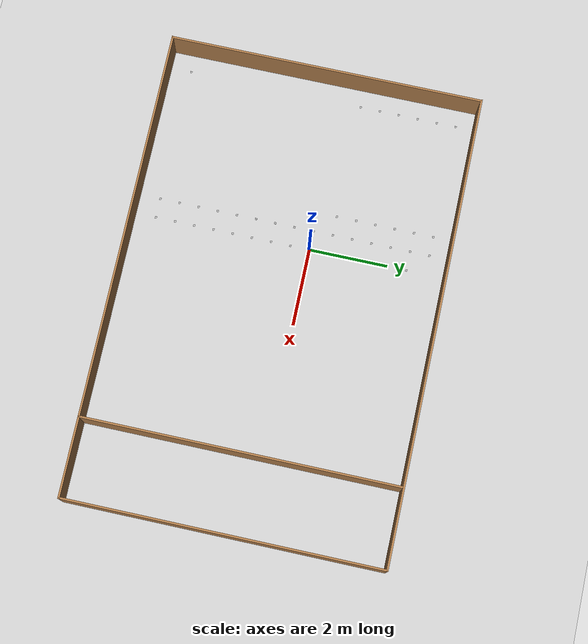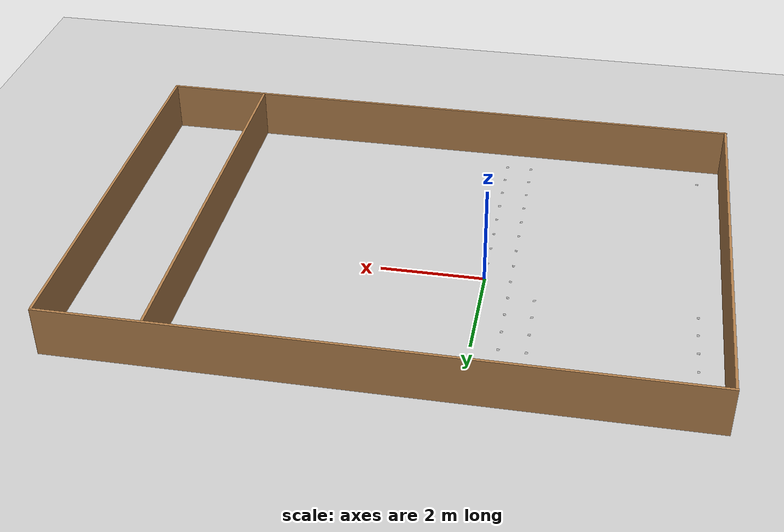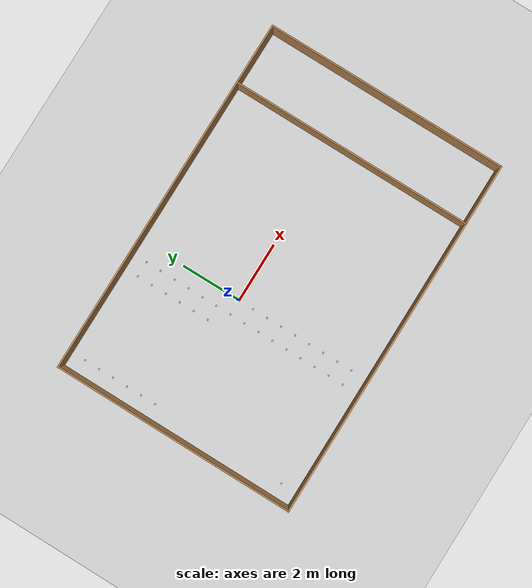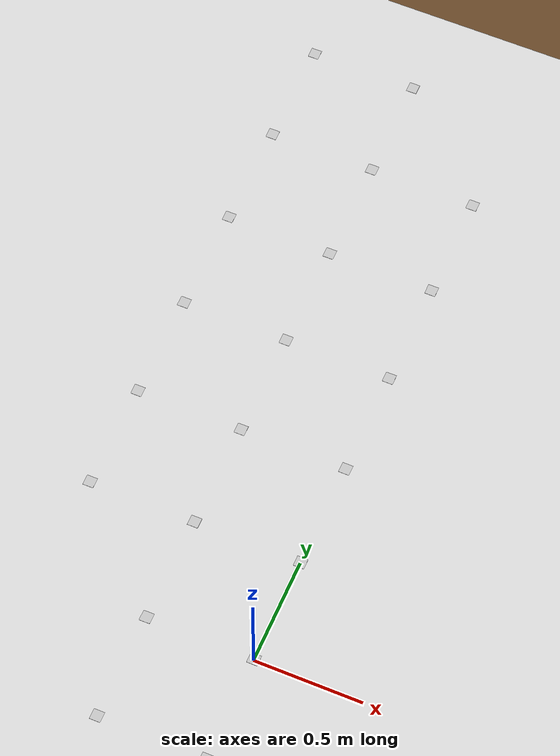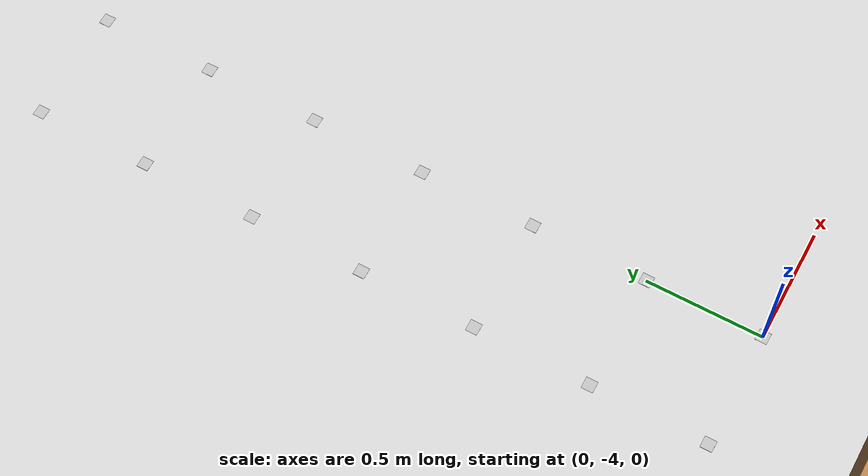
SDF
<sdf version="1.5">
 <world name="default">
  <physics name="default_physics" default="0" type="ode">
   <gravity>0 0 -9.8066</gravity>
   <ode>
    <solver>
     <type>quick</type>
     <iters>10</iters>
     <sor>1.3</sor>
     <use_dynamic_moi_rescaling>0</use_dynamic_moi_rescaling>
    </solver>
    <constraints>
     <cfm>0</cfm>
     <erp>0.2</erp>
     <contact_max_correcting_vel>1000</contact_max_correcting_vel>
     <contact_surface_layer>0.001</contact_surface_layer>
    </constraints>
   </ode>
   <max_step_size>0.004</max_step_size>
   <real_time_factor>1</real_time_factor>
   <real_time_update_rate>250</real_time_update_rate>
   <magnetic_field>6.0e-06 2.3e-05 -4.2e-05</magnetic_field>
  </physics>
  <scene><shadows>false</shadows></scene>
  <light name="sun" type="directional">
   <pose>0 0 1000 0.4 0.2 0</pose>
   <diffuse>1 1 1 1</diffuse>
   <specular>0.6 0.6 0.6 1</specular>
   <direction>0.1 0.1 -0.9</direction>
   <attenuation>
    <range>20</range>
    <constant>0.5</constant>
    <linear>0.01</linear>
    <quadratic>0.001</quadratic>
   </attenuation>
  </light>
  <include><uri>model://ground_plane</uri></include>
  <model name="wall"><include><uri>model://wall</uri><pose>-0.090000 0.020000 0 0 0 0</pose></include></model>
  <model name="tag1"><include><uri>model://tags/tag1</uri><pose>-4.0 -4.0 0.011 0 0 0</pose></include></model>
  <model name="tag10"><include><uri>model://tags/tag10</uri><pose>-4.0 .5 0.011 0 0 0</pose></include></model>
  <model name="tag11"><include><uri>model://tags/tag11</uri><pose>-4.0 1.0 0.011 0 0 0</pose></include></model>
  <model name="tag12"><include><uri>model://tags/tag12</uri><pose>-4.0 1.5 0.011 0 0 0</pose></include></model>
  <model name="tag13"><include><uri>model://tags/tag13</uri><pose>-4.0 2.0 0.011 0 0 0</pose></include></model>
  <model name="tag14"><include><uri>model://tags/tag14</uri><pose>-4.0 2.5 0.011 0 0 0</pose></include></model>
  <model name="tag15"><include><uri>model://tags/tag15</uri><pose>-4.0 3.0 0.011 0 0 0</pose></include></model>
  <model name="tag100"><include><uri>model://tags/tag100</uri><pose>-1.0 .5 0.011 0 0 0</pose></include></model>
  <model name="tag101">
   <include><uri>model://tags/tag101</uri><pose>-1.0 1.0 0.011 0 0 0</pose></include>
  </model>
  <model name="tag102">
   <include><uri>model://tags/tag102</uri><pose>-1.0 1.5 0.011 0 0 0</pose></include>
  </model>
  <model name="tag103">
   <include><uri>model://tags/tag103</uri><pose>-1.0 2.0 0.011 0 0 0</pose></include>
  </model>
  <model name="tag104">
   <include><uri>model://tags/tag104</uri><pose>-1.0 2.5 0.011 0 0 0</pose></include>
  </model>
  <model name="tag105">
   <include><uri>model://tags/tag105</uri><pose>-1.0 3.0 0.011 0 0 0</pose></include>
  </model>
  <model name="tag106">
   <include><uri>model://tags/tag106</uri><pose>-.5 -4.0 0.011 0 0 0</pose></include>
  </model>
  <model name="tag107">
   <include><uri>model://tags/tag107</uri><pose>-.5 -3.5 0.011 0 0 0</pose></include>
  </model>
  <model name="tag108">
   <include><uri>model://tags/tag108</uri><pose>-.5 -3.0 0.011 0 0 0</pose></include>
  </model>
  <model name="tag109">
   <include><uri>model://tags/tag109</uri><pose>-.5 -2.5 0.011 0 0 0</pose></include>
  </model>
  <model name="tag110">
   <include><uri>model://tags/tag110</uri><pose>-.5 -2.0 0.011 0 0 0</pose></include>
  </model>
  <model name="tag111">
   <include><uri>model://tags/tag111</uri><pose>-.5 -1.5 0.011 0 0 0</pose></include>
  </model>
  <model name="tag112">
   <include><uri>model://tags/tag112</uri><pose>-.5 -1.0 0.011 0 0 0</pose></include>
  </model>
  <model name="tag113"><include><uri>model://tags/tag113</uri><pose>-.5 -.5 0.011 0 0 0</pose></include></model>
  <model name="tag114"><include><uri>model://tags/tag114</uri><pose>-.5 0 0.011 0 0 0</pose></include></model>
  <model name="tag115"><include><uri>model://tags/tag115</uri><pose>-.5 .5 0.011 0 0 0</pose></include></model>
  <model name="tag116"><include><uri>model://tags/tag116</uri><pose>-.5 1.0 0.011 0 0 0</pose></include></model>
  <model name="tag117"><include><uri>model://tags/tag117</uri><pose>-.5 1.5 0.011 0 0 0</pose></include></model>
  <model name="tag118"><include><uri>model://tags/tag118</uri><pose>-.5 2.0 0.011 0 0 0</pose></include></model>
  <model name="tag119"><include><uri>model://tags/tag119</uri><pose>-.5 2.5 0.011 0 0 0</pose></include></model>
  <model name="tag120"><include><uri>model://tags/tag120</uri><pose>-.5 3.0 0.011 0 0 0</pose></include></model>
  <model name="tag121"><include><uri>model://tags/tag121</uri><pose>0 -4.0 0.011 0 0 0</pose></include></model>
  <model name="tag122"><include><uri>model://tags/tag122</uri><pose>0 -3.5 0.011 0 0 0</pose></include></model>
  <model name="tag123"><include><uri>model://tags/tag123</uri><pose>0 -3.0 0.011 0 0 0</pose></include></model>
  <model name="tag124"><include><uri>model://tags/tag124</uri><pose>0 -2.5 0.011 0 0 0</pose></include></model>
  <model name="tag125"><include><uri>model://tags/tag125</uri><pose>0 -2.0 0.011 0 0 0</pose></include></model>
  <model name="tag126"><include><uri>model://tags/tag126</uri><pose>0 -1.5 0.011 0 0 0</pose></include></model>
  <model name="tag127"><include><uri>model://tags/tag127</uri><pose>0 -1.0 0.011 0 0 0</pose></include></model>
  <model name="tag128"><include><uri>model://tags/tag128</uri><pose>0 -.5 0.011 0 0 0</pose></include></model>
  <model name="tag129"><include><uri>model://tags/tag129</uri><pose>0 0 0.011 0 0 0</pose></include></model>
  <model name="tag130"><include><uri>model://tags/tag130</uri><pose>0 .5 0.011 0 0 0</pose></include></model>
  <model name="tag131"><include><uri>model://tags/tag131</uri><pose>0 1.0 0.011 0 0 0</pose></include></model>
  <model name="tag132"><include><uri>model://tags/tag132</uri><pose>0 1.5 0.011 0 0 0</pose></include></model>
  <model name="tag133"><include><uri>model://tags/tag133</uri><pose>0 2.0 0.011 0 0 0</pose></include></model>
  <model name="tag134"><include><uri>model://tags/tag134</uri><pose>0 2.5 0.011 0 0 0</pose></include></model>
 </world>
</sdf>

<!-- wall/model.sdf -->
<sdf version="1.5">
    <model name="walls">
        <static>true</static>
        <link name="wall_1">
            <pose>7.57 -0.57 0.5 0 0 0</pose>
            <static>true</static>
            <inertial>
                <mass>1.0</mass>
                <inertia>
                    <!-- inertias are tricky to compute -->
                    <ixx>1</ixx> <!-- for a box: ixx = 0.083 * mass * (y*y + z*z) -->
                    <ixy>0</ixy> <!-- for a box: ixy = 0 -->
                    <ixz>0</ixz> <!-- for a box: ixz = 0 -->
                    <iyy>1</iyy> <!-- for a box: iyy = 0.083 * mass * (x*x + z*z) -->
                    <iyz>0</iyz> <!-- for a box: iyz = 0 -->
                    <izz>1</izz> <!-- for a box: izz = 0.083 * mass * (x*x + y*y) -->
                </inertia>
            </inertial>
            <collision name="collision">
                <geometry>
                    <box>
                        <size>0.05 8 1</size>
                    </box>
                </geometry>
            </collision>
            <visual name="visual">
                <geometry>
                    <box>
                        <size>0.05 8 1</size>
                    </box>
                </geometry>
                <material>
                    <script>
                        <uri>file://media/materials/scripts/gazebo.material</uri>
                        <name>Gazebo/Wood</name>
                    </script>
                </material>
            </visual>
        </link>

        <link name="wall_2">
            <pose>-4.38 -0.57 0.5 0 0 0</pose>
            <static>true</static>
            <inertial>
                <mass>1.0</mass>
                <inertia>
                    <!-- inertias are tricky to compute -->
                    <ixx>1</ixx> <!-- for a box: ixx = 0.083 * mass * (y*y + z*z) -->
                    <ixy>0</ixy> <!-- for a box: ixy = 0 -->
                    <ixz>0</ixz> <!-- for a box: ixz = 0 -->
                    <iyy>1</iyy> <!-- for a box: iyy = 0.083 * mass * (x*x + z*z) -->
                    <iyz>0</iyz> <!-- for a box: iyz = 0 -->
                    <izz>1</izz> <!-- for a box: izz = 0.083 * mass * (x*x + y*y) -->
                </inertia>
            </inertial>
            <collision name="collision">
                <geometry>
                    <box>
                        <size>0.05 8 1</size>
                    </box>
                </geometry>
            </collision>
            <visual name="visual">
                <geometry>
                    <box>
                        <size>0.05 8 1</size>
                    </box>
                </geometry>
                <material>
                    <script>
                        <uri>file://media/materials/scripts/gazebo.material</uri>
                        <name>Gazebo/Wood</name>
                    </script>
                </material>
            </visual>
        </link>

        <link name="wall_3">
            <pose>1.59 -4.56 0.5 0 0 0</pose>
            <static>true</static>
            <inertial>
                <mass>1.0</mass>
                <inertia>
                    <!-- inertias are tricky to compute -->
                    <ixx>1</ixx> <!-- for a box: ixx = 0.083 * mass * (y*y + z*z) -->
                    <ixy>0</ixy> <!-- for a box: ixy = 0 -->
                    <ixz>0</ixz> <!-- for a box: ixz = 0 -->
                    <iyy>1</iyy> <!-- for a box: iyy = 0.083 * mass * (x*x + z*z) -->
                    <iyz>0</iyz> <!-- for a box: iyz = 0 -->
                    <izz>1</izz> <!-- for a box: izz = 0.083 * mass * (x*x + y*y) -->
                </inertia>
            </inertial>
            <collision name="collision">
                <geometry>
                    <box>
                        <size>12 0.05 1</size>
                    </box>
                </geometry>
            </collision>
            <visual name="visual">
                <geometry>
                    <box>
                        <size>12 0.05 1</size>
                    </box>
                </geometry>
                <material>
                    <script>
                        <uri>file://media/materials/scripts/gazebo.material</uri>
                        <name>Gazebo/Wood</name>
                    </script>
                </material>
            </visual>
        </link>

        <link name="wall_4">
            <pose>1.59 3.44 0.5 0 0 0</pose>
            <static>true</static>
            <inertial>
                <mass>1.0</mass>
                <inertia>
                    <!-- inertias are tricky to compute -->
                    <ixx>1</ixx> <!-- for a box: ixx = 0.083 * mass * (y*y + z*z) -->
                    <ixy>0</ixy> <!-- for a box: ixy = 0 -->
                    <ixz>0</ixz> <!-- for a box: ixz = 0 -->
                    <iyy>1</iyy> <!-- for a box: iyy = 0.083 * mass * (x*x + z*z) -->
                    <iyz>0</iyz> <!-- for a box: iyz = 0 -->
                    <izz>1</izz> <!-- for a box: izz = 0.083 * mass * (x*x + y*y) -->
                </inertia>
            </inertial>
            <collision name="collision">
                <geometry>
                    <box>
                        <size>12 0.05 1</size>
                    </box>
                </geometry>
            </collision>
            <visual name="visual">
                <geometry>
                    <box>
                        <size>12 0.05 1</size>
                    </box>
                </geometry>
                <material>
                    <script>
                        <uri>file://media/materials/scripts/gazebo.material</uri>
                        <name>Gazebo/Wood</name>
                    </script>
                </material>
            </visual>
        </link>

        <link name="wall_5">
            <pose>5.57 -0.57 0.5 0 0 0</pose>
            <static>true</static>
            <inertial>
                <mass>1.0</mass>
                <inertia>
                    <!-- inertias are tricky to compute -->
                    <ixx>1</ixx> <!-- for a box: ixx = 0.083 * mass * (y*y + z*z) -->
                    <ixy>0</ixy> <!-- for a box: ixy = 0 -->
                    <ixz>0</ixz> <!-- for a box: ixz = 0 -->
                    <iyy>1</iyy> <!-- for a box: iyy = 0.083 * mass * (x*x + z*z) -->
                    <iyz>0</iyz> <!-- for a box: iyz = 0 -->
                    <izz>1</izz> <!-- for a box: izz = 0.083 * mass * (x*x + y*y) -->
                </inertia>
            </inertial>
            <collision name="collision">
                <geometry>
                    <box>
                        <size>0.05 8 1</size>
                    </box>
                </geometry>
            </collision>
            <visual name="visual">
                <geometry>
                    <box>
                        <size>0.05 8 1</size>
                    </box>
                </geometry>
                <material>
                    <script>
                        <uri>file://media/materials/scripts/gazebo.material</uri>
                        <name>Gazebo/Wood</name>
                    </script>
                </material>
            </visual>
        </link>

    </model>
</sdf>

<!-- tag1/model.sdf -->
<sdf version="1.5">
  <model name="tag1">
    <static>true</static>

    <link name="link">
      <collision name="collision">
        <geometry>
          <mesh>
            <uri>model://tags/tag1/meshes/tag1.dae</uri>
          </mesh>
        </geometry>
      </collision>
      <visual name="visual">
        <geometry>
          <mesh>
            <uri>model://tags/tag1/meshes/tag1.dae</uri>
            </mesh>
        </geometry>
      </visual>
    </link>
  </model>
</sdf>

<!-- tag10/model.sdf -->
<sdf version="1.5">
  <model name="tag10">
    <static>true</static>

    <link name="link">
      <collision name="collision">
        <geometry>
          <mesh>
            <uri>model://tags/tag10/meshes/tag10.dae</uri>
          </mesh>
        </geometry>
      </collision>
      <visual name="visual">
        <geometry>
          <mesh>
            <uri>model://tags/tag10/meshes/tag10.dae</uri>
            </mesh>
        </geometry>
      </visual>
    </link>
  </model>
</sdf>

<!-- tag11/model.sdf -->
<sdf version="1.5">
  <model name="tag11">
    <static>true</static>

    <link name="link">
      <collision name="collision">
        <geometry>
          <mesh>
            <uri>model://tags/tag11/meshes/tag11.dae</uri>
          </mesh>
        </geometry>
      </collision>
      <visual name="visual">
        <geometry>
          <mesh>
            <uri>model://tags/tag11/meshes/tag11.dae</uri>
            </mesh>
        </geometry>
      </visual>
    </link>
  </model>
</sdf>

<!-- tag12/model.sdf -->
<sdf version="1.5">
  <model name="tag12">
    <static>true</static>

    <link name="link">
      <collision name="collision">
        <geometry>
          <mesh>
            <uri>model://tags/tag12/meshes/tag12.dae</uri>
          </mesh>
        </geometry>
      </collision>
      <visual name="visual">
        <geometry>
          <mesh>
            <uri>model://tags/tag12/meshes/tag12.dae</uri>
            </mesh>
        </geometry>
      </visual>
    </link>
  </model>
</sdf>

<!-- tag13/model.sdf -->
<sdf version="1.5">
  <model name="tag13">
    <static>true</static>

    <link name="link">
      <collision name="collision">
        <geometry>
          <mesh>
            <uri>model://tags/tag13/meshes/tag13.dae</uri>
          </mesh>
        </geometry>
      </collision>
      <visual name="visual">
        <geometry>
          <mesh>
            <uri>model://tags/tag13/meshes/tag13.dae</uri>
            </mesh>
        </geometry>
      </visual>
    </link>
  </model>
</sdf>

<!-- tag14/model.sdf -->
<sdf version="1.5">
  <model name="tag14">
    <static>true</static>

    <link name="link">
      <collision name="collision">
        <geometry>
          <mesh>
            <uri>model://tags/tag14/meshes/tag14.dae</uri>
          </mesh>
        </geometry>
      </collision>
      <visual name="visual">
        <geometry>
          <mesh>
            <uri>model://tags/tag14/meshes/tag14.dae</uri>
            </mesh>
        </geometry>
      </visual>
    </link>
  </model>
</sdf>

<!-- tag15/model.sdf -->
<sdf version="1.5">
  <model name="tag15">
    <static>true</static>

    <link name="link">
      <collision name="collision">
        <geometry>
          <mesh>
            <uri>model://tags/tag15/meshes/tag15.dae</uri>
          </mesh>
        </geometry>
      </collision>
      <visual name="visual">
        <geometry>
          <mesh>
            <uri>model://tags/tag15/meshes/tag15.dae</uri>
            </mesh>
        </geometry>
      </visual>
    </link>
  </model>
</sdf>

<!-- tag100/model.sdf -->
<sdf version="1.5">
  <model name="tag100">
    <static>true</static>

    <link name="link">
      <collision name="collision">
        <geometry>
          <mesh>
            <uri>model://tags/tag100/meshes/tag100.dae</uri>
          </mesh>
        </geometry>
      </collision>
      <visual name="visual">
        <geometry>
          <mesh>
            <uri>model://tags/tag100/meshes/tag100.dae</uri>
            </mesh>
        </geometry>
      </visual>
    </link>
  </model>
</sdf>

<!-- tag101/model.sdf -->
<sdf version="1.5">
  <model name="tag101">
    <static>true</static>

    <link name="link">
      <collision name="collision">
        <geometry>
          <mesh>
            <uri>model://tags/tag101/meshes/tag101.dae</uri>
          </mesh>
        </geometry>
      </collision>
      <visual name="visual">
        <geometry>
          <mesh>
            <uri>model://tags/tag101/meshes/tag101.dae</uri>
            </mesh>
        </geometry>
      </visual>
    </link>
  </model>
</sdf>

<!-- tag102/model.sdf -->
<sdf version="1.5">
  <model name="tag102">
    <static>true</static>

    <link name="link">
      <collision name="collision">
        <geometry>
          <mesh>
            <uri>model://tags/tag102/meshes/tag102.dae</uri>
          </mesh>
        </geometry>
      </collision>
      <visual name="visual">
        <geometry>
          <mesh>
            <uri>model://tags/tag102/meshes/tag102.dae</uri>
            </mesh>
        </geometry>
      </visual>
    </link>
  </model>
</sdf>

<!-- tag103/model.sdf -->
<sdf version="1.5">
  <model name="tag103">
    <static>true</static>

    <link name="link">
      <collision name="collision">
        <geometry>
          <mesh>
            <uri>model://tags/tag103/meshes/tag103.dae</uri>
          </mesh>
        </geometry>
      </collision>
      <visual name="visual">
        <geometry>
          <mesh>
            <uri>model://tags/tag103/meshes/tag103.dae</uri>
            </mesh>
        </geometry>
      </visual>
    </link>
  </model>
</sdf>

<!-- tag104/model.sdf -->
<sdf version="1.5">
  <model name="tag104">
    <static>true</static>

    <link name="link">
      <collision name="collision">
        <geometry>
          <mesh>
            <uri>model://tags/tag104/meshes/tag104.dae</uri>
          </mesh>
        </geometry>
      </collision>
      <visual name="visual">
        <geometry>
          <mesh>
            <uri>model://tags/tag104/meshes/tag104.dae</uri>
            </mesh>
        </geometry>
      </visual>
    </link>
  </model>
</sdf>

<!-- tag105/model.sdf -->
<sdf version="1.5">
  <model name="tag105">
    <static>true</static>

    <link name="link">
      <collision name="collision">
        <geometry>
          <mesh>
            <uri>model://tags/tag105/meshes/tag105.dae</uri>
          </mesh>
        </geometry>
      </collision>
      <visual name="visual">
        <geometry>
          <mesh>
            <uri>model://tags/tag105/meshes/tag105.dae</uri>
            </mesh>
        </geometry>
      </visual>
    </link>
  </model>
</sdf>

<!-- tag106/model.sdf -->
<sdf version="1.5">
  <model name="tag106">
    <static>true</static>

    <link name="link">
      <collision name="collision">
        <geometry>
          <mesh>
            <uri>model://tags/tag106/meshes/tag106.dae</uri>
          </mesh>
        </geometry>
      </collision>
      <visual name="visual">
        <geometry>
          <mesh>
            <uri>model://tags/tag106/meshes/tag106.dae</uri>
            </mesh>
        </geometry>
      </visual>
    </link>
  </model>
</sdf>

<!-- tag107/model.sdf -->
<sdf version="1.5">
  <model name="tag107">
    <static>true</static>

    <link name="link">
      <collision name="collision">
        <geometry>
          <mesh>
            <uri>model://tags/tag107/meshes/tag107.dae</uri>
          </mesh>
        </geometry>
      </collision>
      <visual name="visual">
        <geometry>
          <mesh>
            <uri>model://tags/tag107/meshes/tag107.dae</uri>
            </mesh>
        </geometry>
      </visual>
    </link>
  </model>
</sdf>

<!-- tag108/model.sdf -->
<sdf version="1.5">
  <model name="tag108">
    <static>true</static>

    <link name="link">
      <collision name="collision">
        <geometry>
          <mesh>
            <uri>model://tags/tag108/meshes/tag108.dae</uri>
          </mesh>
        </geometry>
      </collision>
      <visual name="visual">
        <geometry>
          <mesh>
            <uri>model://tags/tag108/meshes/tag108.dae</uri>
            </mesh>
        </geometry>
      </visual>
    </link>
  </model>
</sdf>

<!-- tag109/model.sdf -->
<sdf version="1.5">
  <model name="tag109">
    <static>true</static>

    <link name="link">
      <collision name="collision">
        <geometry>
          <mesh>
            <uri>model://tags/tag109/meshes/tag109.dae</uri>
          </mesh>
        </geometry>
      </collision>
      <visual name="visual">
        <geometry>
          <mesh>
            <uri>model://tags/tag109/meshes/tag109.dae</uri>
            </mesh>
        </geometry>
      </visual>
    </link>
  </model>
</sdf>

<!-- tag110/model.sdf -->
<sdf version="1.5">
  <model name="tag110">
    <static>true</static>

    <link name="link">
      <collision name="collision">
        <geometry>
          <mesh>
            <uri>model://tags/tag110/meshes/tag110.dae</uri>
          </mesh>
        </geometry>
      </collision>
      <visual name="visual">
        <geometry>
          <mesh>
            <uri>model://tags/tag110/meshes/tag110.dae</uri>
            </mesh>
        </geometry>
      </visual>
    </link>
  </model>
</sdf>

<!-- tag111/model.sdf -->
<sdf version="1.5">
  <model name="tag111">
    <static>true</static>

    <link name="link">
      <collision name="collision">
        <geometry>
          <mesh>
            <uri>model://tags/tag111/meshes/tag111.dae</uri>
          </mesh>
        </geometry>
      </collision>
      <visual name="visual">
        <geometry>
          <mesh>
            <uri>model://tags/tag111/meshes/tag111.dae</uri>
            </mesh>
        </geometry>
      </visual>
    </link>
  </model>
</sdf>

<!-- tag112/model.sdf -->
<sdf version="1.5">
  <model name="tag112">
    <static>true</static>

    <link name="link">
      <collision name="collision">
        <geometry>
          <mesh>
            <uri>model://tags/tag112/meshes/tag112.dae</uri>
          </mesh>
        </geometry>
      </collision>
      <visual name="visual">
        <geometry>
          <mesh>
            <uri>model://tags/tag112/meshes/tag112.dae</uri>
            </mesh>
        </geometry>
      </visual>
    </link>
  </model>
</sdf>

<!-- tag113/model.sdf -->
<sdf version="1.5">
  <model name="tag113">
    <static>true</static>

    <link name="link">
      <collision name="collision">
        <geometry>
          <mesh>
            <uri>model://tags/tag113/meshes/tag113.dae</uri>
          </mesh>
        </geometry>
      </collision>
      <visual name="visual">
        <geometry>
          <mesh>
            <uri>model://tags/tag113/meshes/tag113.dae</uri>
            </mesh>
        </geometry>
      </visual>
    </link>
  </model>
</sdf>

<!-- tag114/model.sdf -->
<sdf version="1.5">
  <model name="tag114">
    <static>true</static>

    <link name="link">
      <collision name="collision">
        <geometry>
          <mesh>
            <uri>model://tags/tag114/meshes/tag114.dae</uri>
          </mesh>
        </geometry>
      </collision>
      <visual name="visual">
        <geometry>
          <mesh>
            <uri>model://tags/tag114/meshes/tag114.dae</uri>
            </mesh>
        </geometry>
      </visual>
    </link>
  </model>
</sdf>

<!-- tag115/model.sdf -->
<sdf version="1.5">
  <model name="tag115">
    <static>true</static>

    <link name="link">
      <collision name="collision">
        <geometry>
          <mesh>
            <uri>model://tags/tag115/meshes/tag115.dae</uri>
          </mesh>
        </geometry>
      </collision>
      <visual name="visual">
        <geometry>
          <mesh>
            <uri>model://tags/tag115/meshes/tag115.dae</uri>
            </mesh>
        </geometry>
      </visual>
    </link>
  </model>
</sdf>

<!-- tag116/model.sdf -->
<sdf version="1.5">
  <model name="tag116">
    <static>true</static>

    <link name="link">
      <collision name="collision">
        <geometry>
          <mesh>
            <uri>model://tags/tag116/meshes/tag116.dae</uri>
          </mesh>
        </geometry>
      </collision>
      <visual name="visual">
        <geometry>
          <mesh>
            <uri>model://tags/tag116/meshes/tag116.dae</uri>
            </mesh>
        </geometry>
      </visual>
    </link>
  </model>
</sdf>

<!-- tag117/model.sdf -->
<sdf version="1.5">
  <model name="tag117">
    <static>true</static>

    <link name="link">
      <collision name="collision">
        <geometry>
          <mesh>
            <uri>model://tags/tag117/meshes/tag117.dae</uri>
          </mesh>
        </geometry>
      </collision>
      <visual name="visual">
        <geometry>
          <mesh>
            <uri>model://tags/tag117/meshes/tag117.dae</uri>
            </mesh>
        </geometry>
      </visual>
    </link>
  </model>
</sdf>

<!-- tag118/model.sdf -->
<sdf version="1.5">
  <model name="tag118">
    <static>true</static>

    <link name="link">
      <collision name="collision">
        <geometry>
          <mesh>
            <uri>model://tags/tag118/meshes/tag118.dae</uri>
          </mesh>
        </geometry>
      </collision>
      <visual name="visual">
        <geometry>
          <mesh>
            <uri>model://tags/tag118/meshes/tag118.dae</uri>
            </mesh>
        </geometry>
      </visual>
    </link>
  </model>
</sdf>

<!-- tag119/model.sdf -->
<sdf version="1.5">
  <model name="tag119">
    <static>true</static>

    <link name="link">
      <collision name="collision">
        <geometry>
          <mesh>
            <uri>model://tags/tag119/meshes/tag119.dae</uri>
          </mesh>
        </geometry>
      </collision>
      <visual name="visual">
        <geometry>
          <mesh>
            <uri>model://tags/tag119/meshes/tag119.dae</uri>
            </mesh>
        </geometry>
      </visual>
    </link>
  </model>
</sdf>

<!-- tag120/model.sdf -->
<sdf version="1.5">
  <model name="tag120">
    <static>true</static>

    <link name="link">
      <collision name="collision">
        <geometry>
          <mesh>
            <uri>model://tags/tag120/meshes/tag120.dae</uri>
          </mesh>
        </geometry>
      </collision>
      <visual name="visual">
        <geometry>
          <mesh>
            <uri>model://tags/tag120/meshes/tag120.dae</uri>
            </mesh>
        </geometry>
      </visual>
    </link>
  </model>
</sdf>

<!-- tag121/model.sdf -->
<sdf version="1.5">
  <model name="tag121">
    <static>true</static>

    <link name="link">
      <collision name="collision">
        <geometry>
          <mesh>
            <uri>model://tags/tag121/meshes/tag121.dae</uri>
          </mesh>
        </geometry>
      </collision>
      <visual name="visual">
        <geometry>
          <mesh>
            <uri>model://tags/tag121/meshes/tag121.dae</uri>
            </mesh>
        </geometry>
      </visual>
    </link>
  </model>
</sdf>

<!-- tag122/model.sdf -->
<sdf version="1.5">
  <model name="tag122">
    <static>true</static>

    <link name="link">
      <collision name="collision">
        <geometry>
          <mesh>
            <uri>model://tags/tag122/meshes/tag122.dae</uri>
          </mesh>
        </geometry>
      </collision>
      <visual name="visual">
        <geometry>
          <mesh>
            <uri>model://tags/tag122/meshes/tag122.dae</uri>
            </mesh>
        </geometry>
      </visual>
    </link>
  </model>
</sdf>

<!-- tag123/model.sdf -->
<sdf version="1.5">
  <model name="tag123">
    <static>true</static>

    <link name="link">
      <collision name="collision">
        <geometry>
          <mesh>
            <uri>model://tags/tag123/meshes/tag123.dae</uri>
          </mesh>
        </geometry>
      </collision>
      <visual name="visual">
        <geometry>
          <mesh>
            <uri>model://tags/tag123/meshes/tag123.dae</uri>
            </mesh>
        </geometry>
      </visual>
    </link>
  </model>
</sdf>

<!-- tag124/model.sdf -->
<sdf version="1.5">
  <model name="tag124">
    <static>true</static>

    <link name="link">
      <collision name="collision">
        <geometry>
          <mesh>
            <uri>model://tags/tag124/meshes/tag124.dae</uri>
          </mesh>
        </geometry>
      </collision>
      <visual name="visual">
        <geometry>
          <mesh>
            <uri>model://tags/tag124/meshes/tag124.dae</uri>
            </mesh>
        </geometry>
      </visual>
    </link>
  </model>
</sdf>

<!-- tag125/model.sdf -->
<sdf version="1.5">
  <model name="tag125">
    <static>true</static>

    <link name="link">
      <collision name="collision">
        <geometry>
          <mesh>
            <uri>model://tags/tag125/meshes/tag125.dae</uri>
          </mesh>
        </geometry>
      </collision>
      <visual name="visual">
        <geometry>
          <mesh>
            <uri>model://tags/tag125/meshes/tag125.dae</uri>
            </mesh>
        </geometry>
      </visual>
    </link>
  </model>
</sdf>

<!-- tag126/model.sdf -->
<sdf version="1.5">
  <model name="tag126">
    <static>true</static>

    <link name="link">
      <collision name="collision">
        <geometry>
          <mesh>
            <uri>model://tags/tag126/meshes/tag126.dae</uri>
          </mesh>
        </geometry>
      </collision>
      <visual name="visual">
        <geometry>
          <mesh>
            <uri>model://tags/tag126/meshes/tag126.dae</uri>
            </mesh>
        </geometry>
      </visual>
    </link>
  </model>
</sdf>

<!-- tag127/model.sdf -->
<sdf version="1.5">
  <model name="tag127">
    <static>true</static>

    <link name="link">
      <collision name="collision">
        <geometry>
          <mesh>
            <uri>model://tags/tag127/meshes/tag127.dae</uri>
          </mesh>
        </geometry>
      </collision>
      <visual name="visual">
        <geometry>
          <mesh>
            <uri>model://tags/tag127/meshes/tag127.dae</uri>
            </mesh>
        </geometry>
      </visual>
    </link>
  </model>
</sdf>

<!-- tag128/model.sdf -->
<sdf version="1.5">
  <model name="tag128">
    <static>true</static>

    <link name="link">
      <collision name="collision">
        <geometry>
          <mesh>
            <uri>model://tags/tag128/meshes/tag128.dae</uri>
          </mesh>
        </geometry>
      </collision>
      <visual name="visual">
        <geometry>
          <mesh>
            <uri>model://tags/tag128/meshes/tag128.dae</uri>
            </mesh>
        </geometry>
      </visual>
    </link>
  </model>
</sdf>

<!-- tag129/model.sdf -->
<sdf version="1.5">
  <model name="tag129">
    <static>true</static>

    <link name="link">
      <collision name="collision">
        <geometry>
          <mesh>
            <uri>model://tags/tag129/meshes/tag129.dae</uri>
          </mesh>
        </geometry>
      </collision>
      <visual name="visual">
        <geometry>
          <mesh>
            <uri>model://tags/tag129/meshes/tag129.dae</uri>
            </mesh>
        </geometry>
      </visual>
    </link>
  </model>
</sdf>

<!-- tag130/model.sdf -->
<sdf version="1.5">
  <model name="tag130">
    <static>true</static>

    <link name="link">
      <collision name="collision">
        <geometry>
          <mesh>
            <uri>model://tags/tag130/meshes/tag130.dae</uri>
          </mesh>
        </geometry>
      </collision>
      <visual name="visual">
        <geometry>
          <mesh>
            <uri>model://tags/tag130/meshes/tag130.dae</uri>
            </mesh>
        </geometry>
      </visual>
    </link>
  </model>
</sdf>

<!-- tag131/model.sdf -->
<sdf version="1.5">
  <model name="tag131">
    <static>true</static>

    <link name="link">
      <collision name="collision">
        <geometry>
          <mesh>
            <uri>model://tags/tag131/meshes/tag131.dae</uri>
          </mesh>
        </geometry>
      </collision>
      <visual name="visual">
        <geometry>
          <mesh>
            <uri>model://tags/tag131/meshes/tag131.dae</uri>
            </mesh>
        </geometry>
      </visual>
    </link>
  </model>
</sdf>

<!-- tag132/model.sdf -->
<sdf version="1.5">
  <model name="tag132">
    <static>true</static>

    <link name="link">
      <collision name="collision">
        <geometry>
          <mesh>
            <uri>model://tags/tag132/meshes/tag132.dae</uri>
          </mesh>
        </geometry>
      </collision>
      <visual name="visual">
        <geometry>
          <mesh>
            <uri>model://tags/tag132/meshes/tag132.dae</uri>
            </mesh>
        </geometry>
      </visual>
    </link>
  </model>
</sdf>

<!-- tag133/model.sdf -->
<sdf version="1.5">
  <model name="tag133">
    <static>true</static>

    <link name="link">
      <collision name="collision">
        <geometry>
          <mesh>
            <uri>model://tags/tag133/meshes/tag133.dae</uri>
          </mesh>
        </geometry>
      </collision>
      <visual name="visual">
        <geometry>
          <mesh>
            <uri>model://tags/tag133/meshes/tag133.dae</uri>
            </mesh>
        </geometry>
      </visual>
    </link>
  </model>
</sdf>

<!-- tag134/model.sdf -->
<sdf version="1.5">
  <model name="tag134">
    <static>true</static>

    <link name="link">
      <collision name="collision">
        <geometry>
          <mesh>
            <uri>model://tags/tag134/meshes/tag134.dae</uri>
          </mesh>
        </geometry>
      </collision>
      <visual name="visual">
        <geometry>
          <mesh>
            <uri>model://tags/tag134/meshes/tag134.dae</uri>
            </mesh>
        </geometry>
      </visual>
    </link>
  </model>
</sdf>
